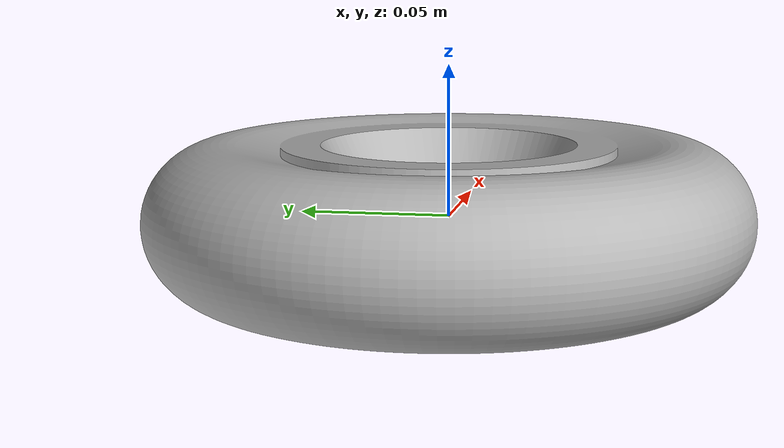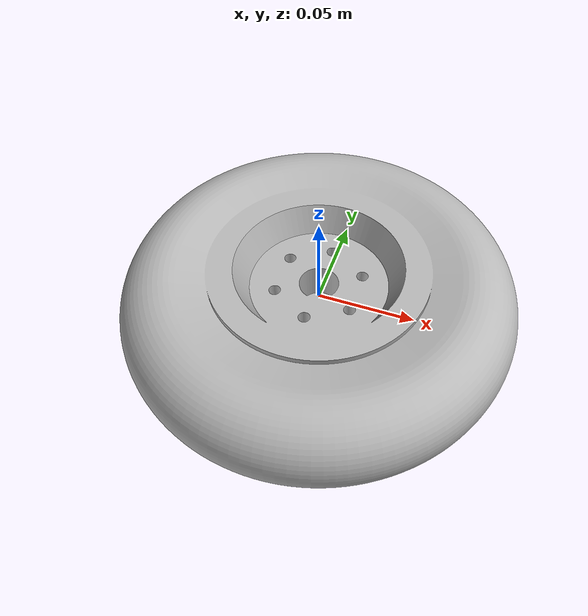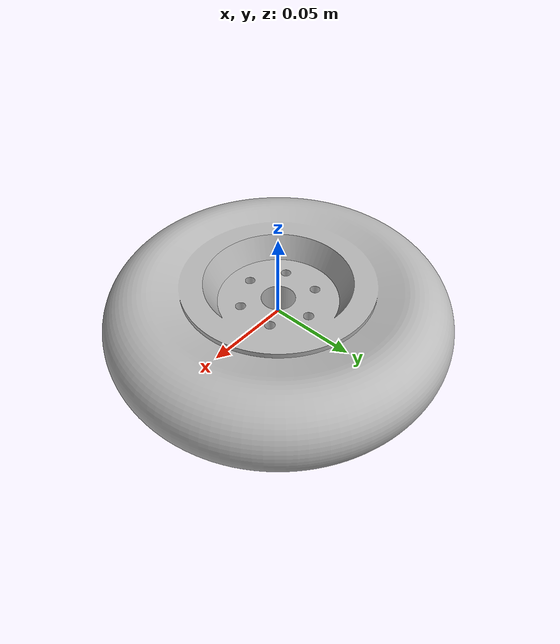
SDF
<?xml version='1.0'?>
<sdf version='1.7'>
  <model name='donut'>
    <link name='link'>
      <pose>0 0 0 0 1.5707 0</pose>
      <inertial>
        <mass>0.5</mass>
        <inertia>
          <ixx>0.167005</ixx>
          <ixy>0</ixy>
          <ixz>0</ixz>
          <iyy>0.167005</iyy>
          <iyz>0</iyz>
          <izz>0.282065</izz>
        </inertia>
        <pose>0 0 0 0 -0 0</pose>
      </inertial>
      <self_collide>0</self_collide>
      <enable_wind>0</enable_wind>
      <kinematic>0</kinematic>
      <visual name='visual'>
        <pose>0 0 0 0 -0 0</pose>
        <geometry>
          <mesh>
            <uri>model://donut/meshes/donut.stl</uri>
          </mesh>
        </geometry>
        <material>
          <shader type='pixel'/>
        </material>
        <transparency>0</transparency>
        <cast_shadows>1</cast_shadows>
      </visual>
      <collision name='collision'>
        <laser_retro>0</laser_retro>
        <max_contacts>10</max_contacts>
        <pose>0 0 0 0 -0 0</pose>
        <geometry>
          <cylinder>
            <radius>0.21682</radius>
            <length>0.16116</length>
          </cylinder>
        </geometry>
        <surface>
          <friction>
            <ode>
              <mu>1</mu>
              <mu2>1</mu2>
              <fdir1>0 0 1</fdir1>
              <slip1>0</slip1>
              <slip2>0</slip2>
            </ode>
            <torsional>
              <coefficient>1</coefficient>
              <patch_radius>0</patch_radius>
              <surface_radius>0</surface_radius>
              <use_patch_radius>1</use_patch_radius>
              <ode>
                <slip>0</slip>
              </ode>
            </torsional>
          </friction>
          <bounce>
            <restitution_coefficient>0</restitution_coefficient>
            <threshold>1e+06</threshold>
          </bounce>
          <contact>
            <collide_without_contact>0</collide_without_contact>
            <collide_without_contact_bitmask>1</collide_without_contact_bitmask>
            <collide_bitmask>1</collide_bitmask>
            <ode>
              <soft_cfm>0</soft_cfm>
              <soft_erp>0.2</soft_erp>
              <kp>1e+08</kp>
              <kd>1</kd>
              <max_vel>0.01</max_vel>
              <min_depth>0.005</min_depth>
            </ode>
            <bullet>
              <split_impulse>1</split_impulse>
              <split_impulse_penetration_threshold>-0.01</split_impulse_penetration_threshold>
              <soft_cfm>0</soft_cfm>
              <soft_erp>0.2</soft_erp>
              <kp>1e+08</kp>
              <kd>1</kd>
            </bullet>
          </contact>
        </surface>
      </collision>
    </link>
    <static>0</static>
    <allow_auto_disable>1</allow_auto_disable>
  </model>
</sdf>
